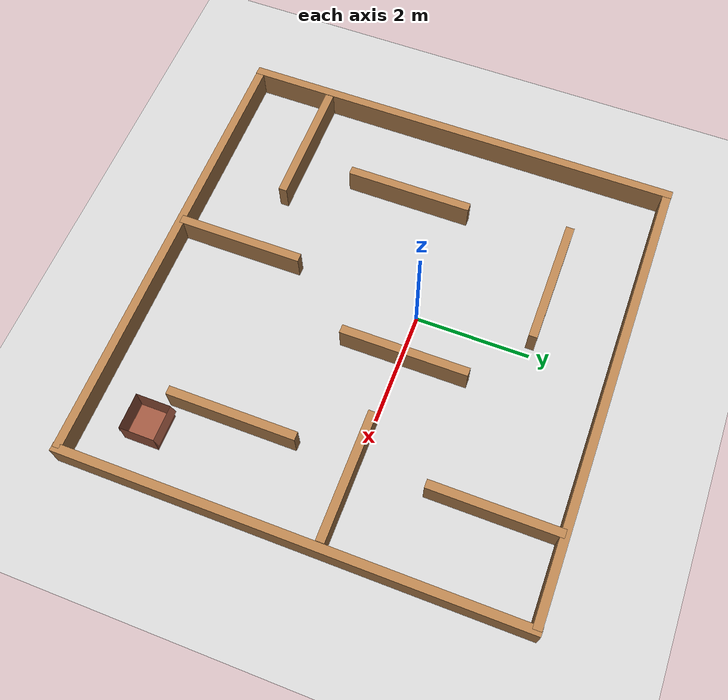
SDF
<sdf version="1.6">
 <world name="default">
  <light name="sun" type="directional">
   <pose>0 0 10 0 -0 0</pose>
   <diffuse>0.8 0.8 0.8 1</diffuse>
   <specular>0.1 0.1 0.1 1</specular>
   <attenuation>
    <range>1000</range>
    <constant>0.9</constant>
    <linear>0.01</linear>
    <quadratic>0.001</quadratic>
   </attenuation>
   <direction>-0.5 0.5 -1</direction>
  </light>
  <model name="ground_plane">
   <static>1</static>
   <link name="link">
    <collision name="collision">
     <geometry><plane><normal>0 0 1</normal><size>100 100</size></plane></geometry>
     <surface><friction><ode><mu>100</mu><mu2>50</mu2></ode></friction></surface>
    </collision>
    <visual name="visual">
     <cast_shadows>0</cast_shadows>
     <geometry><plane><normal>0 0 1</normal><size>100 100</size></plane></geometry>
     <material>
      <script><uri>file://media/materials/scripts/gazebo.material</uri><name>Gazebo/Grey</name></script>
     </material>
    </visual>
   </link>
  </model>
  <physics name="default_physics" default="0" type="ode">
   <real_time_update_rate>1000</real_time_update_rate>
   <max_step_size>0.001</max_step_size>
   <real_time_factor>1</real_time_factor>
   <ode>
    <solver>
     <type>quick</type>
     <iters>150</iters>
     <precon_iters>0</precon_iters>
     <sor>1.4</sor>
     <use_dynamic_moi_rescaling>1</use_dynamic_moi_rescaling>
    </solver>
    <constraints>
     <cfm>1e-05</cfm>
     <erp>0.2</erp>
     <contact_max_correcting_vel>2000</contact_max_correcting_vel>
     <contact_surface_layer>0.01</contact_surface_layer>
    </constraints>
   </ode>
  </physics>
  <scene><ambient>0.4 0.4 0.4 1</ambient><background>0.7 0.7 0.7 1</background><shadows>1</shadows></scene>
  <gravity>0 0 -9.8</gravity>
  <magnetic_field>6e-06 2.3e-05 -4.2e-05</magnetic_field>
  <atmosphere type="adiabatic"/>
  <spherical_coordinates>
   <surface_model>EARTH_WGS84</surface_model>
   <latitude_deg>0</latitude_deg>
   <longitude_deg>0</longitude_deg>
   <elevation>0</elevation>
   <heading_deg>0</heading_deg>
  </spherical_coordinates>
  <model name="turtlebot3_plaza">
   <pose>0.34992 -0.526986 0 0 -0 0</pose>
   <link name="Wall_0">
    <collision name="Wall_0_Collision">
     <geometry><box><size>8.0 0.15 0.5</size></box></geometry>
     <pose>0 0 0.25 0 -0 0</pose>
    </collision>
    <visual name="Wall_0_Visual">
     <pose>0 0 0.25 0 -0 0</pose>
     <geometry><box><size>8.0 0.15 0.5</size></box></geometry>
     <material>
      <script><uri>file://media/materials/scripts/gazebo.material</uri><name>Gazebo/Wood</name></script>
      <ambient>1 1 1 1</ambient>
     </material>
    </visual>
    <pose>-4.0 0 0 0 0 1.5708</pose>
   </link>
   <link name="Wall_1">
    <collision name="Wall_1_Collision">
     <geometry><box><size>8.0 0.15 0.5</size></box></geometry>
     <pose>0 0 0.25 0 -0 0</pose>
    </collision>
    <visual name="Wall_1_Visual">
     <pose>0 0 0.25 0 -0 0</pose>
     <geometry><box><size>8.0 0.15 0.5</size></box></geometry>
     <material>
      <script><uri>file://media/materials/scripts/gazebo.material</uri><name>Gazebo/Wood</name></script>
      <ambient>1 1 1 1</ambient>
     </material>
    </visual>
    <pose>0 3.92 0 0 0 0</pose>
   </link>
   <link name="Wall_2">
    <collision name="Wall_2_Collision">
     <geometry><box><size>8.0 0.15 0.5</size></box></geometry>
     <pose>0 0 0.25 0 -0 0</pose>
    </collision>
    <visual name="Wall_2_Visual">
     <pose>0 0 0.25 0 -0 0</pose>
     <geometry><box><size>8.0 0.15 0.5</size></box></geometry>
     <material>
      <script><uri>file://media/materials/scripts/gazebo.material</uri><name>Gazebo/Wood</name></script>
      <ambient>1 1 1 1</ambient>
     </material>
    </visual>
    <pose>4.0 0 0 0 0 1.5708</pose>
   </link>
   <link name="Wall_3">
    <collision name="Wall_3_Collision">
     <geometry><box><size>8.0 0.15 0.5</size></box></geometry>
     <pose>0 0 0.25 0 -0 0</pose>
    </collision>
    <visual name="Wall_3_Visual">
     <pose>0 0 0.25 0 -0 0</pose>
     <geometry><box><size>8.0 0.15 0.5</size></box></geometry>
     <material>
      <script><uri>file://media/materials/scripts/gazebo.material</uri><name>Gazebo/Wood</name></script>
      <ambient>1 1 1 1</ambient>
     </material>
    </visual>
    <pose>0 -3.92 0 0 0 3.14159</pose>
   </link>
   <link name="Wall_4">
    <collision name="Wall_4_Collision">
     <geometry><box><size>2.24 0.15 0.5</size></box></geometry>
     <pose>0 0 0.25 0 -0 0</pose>
    </collision>
    <visual name="Wall_4_Visual">
     <pose>0 0 0.25 0 -0 0</pose>
     <geometry><box><size>2.24 0.15 0.5</size></box></geometry>
     <material>
      <script><uri>file://media/materials/scripts/gazebo.material</uri><name>Gazebo/Wood</name></script>
      <ambient>1 1 1 1</ambient>
     </material>
    </visual>
    <pose>-2.8 -2.5 0 0 0 0</pose>
   </link>
   <link name="Wall_5">
    <collision name="Wall_5_Collision">
     <geometry><box><size>2.24 0.15 0.5</size></box></geometry>
     <pose>0 0 0.25 0 -0 0</pose>
    </collision>
    <visual name="Wall_5_Visual">
     <pose>0 0 0.25 0 -0 0</pose>
     <geometry><box><size>2.24 0.15 0.5</size></box></geometry>
     <material>
      <script><uri>file://media/materials/scripts/gazebo.material</uri><name>Gazebo/Wood</name></script>
      <ambient>1 1 1 1</ambient>
     </material>
    </visual>
    <pose>-0.5 -2.8 0 0 0 -1.5708</pose>
   </link>
   <link name="Wall_6">
    <collision name="Wall_6_Collision">
     <geometry><box><size>2.24 0.15 0.5</size></box></geometry>
     <pose>0 0 0.25 0 -0 0</pose>
    </collision>
    <visual name="Wall_6_Visual">
     <pose>0 0 0.25 0 -0 0</pose>
     <geometry><box><size>2.24 0.15 0.5</size></box></geometry>
     <material>
      <script><uri>file://media/materials/scripts/gazebo.material</uri><name>Gazebo/Wood</name></script>
      <ambient>1 1 1 1</ambient>
     </material>
    </visual>
    <pose>2.5 -1.6 0 0 0 1.5708</pose>
   </link>
   <link name="Wall_7">
    <collision name="Wall_7_Collision">
     <geometry><box><size>2.24 0.15 0.5</size></box></geometry>
     <pose>0 0 0.25 0 -0 0</pose>
    </collision>
    <visual name="Wall_7_Visual">
     <pose>0 0 0.25 0 -0 0</pose>
     <geometry><box><size>2.24 0.15 0.5</size></box></geometry>
     <material>
      <script><uri>file://media/materials/scripts/gazebo.material</uri><name>Gazebo/Wood</name></script>
      <ambient>1 1 1 1</ambient>
     </material>
    </visual>
    <pose>0.5 0.6 0 0 0 -1.5708</pose>
   </link>
   <link name="Wall_8">
    <collision name="Wall_8_Collision">
     <geometry><box><size>2.24 0.15 0.5</size></box></geometry>
     <pose>0 0 0.25 0 -0 0</pose>
    </collision>
    <visual name="Wall_8_Visual">
     <pose>0 0 0.25 0 -0 0</pose>
     <geometry><box><size>2.24 0.15 0.5</size></box></geometry>
     <material>
      <script><uri>file://media/materials/scripts/gazebo.material</uri><name>Gazebo/Wood</name></script>
      <ambient>1 1 1 1</ambient>
     </material>
    </visual>
    <pose>2.8 0.5 0 0 0 0</pose>
   </link>
   <link name="Wall_9">
    <collision name="Wall_9_Collision">
     <geometry><box><size>2.24 0.15 0.5</size></box></geometry>
     <pose>0 0 0.25 0 -0 0</pose>
    </collision>
    <visual name="Wall_9_Visual">
     <pose>0 0 0.25 0 -0 0</pose>
     <geometry><box><size>2.24 0.15 0.5</size></box></geometry>
     <material>
      <script><uri>file://media/materials/scripts/gazebo.material</uri><name>Gazebo/Wood</name></script>
      <ambient>1 1 1 1</ambient>
     </material>
    </visual>
    <pose>2.5 2.8 0 0 0 -1.5708</pose>
   </link>
   <link name="Wall_10">
    <collision name="Wall_10_Collision">
     <geometry><box><size>2.24 0.15 0.5</size></box></geometry>
     <pose>0 0 0.25 0 -0 0</pose>
    </collision>
    <visual name="Wall_10_Visual">
     <pose>0 0 0.25 0 -0 0</pose>
     <geometry><box><size>2.24 0.15 0.5</size></box></geometry>
     <material>
      <script><uri>file://media/materials/scripts/gazebo.material</uri><name>Gazebo/Wood</name></script>
      <ambient>1 1 1 1</ambient>
     </material>
    </visual>
    <pose>-1.6 2.5 0 0 0 0</pose>
   </link>
   <link name="Wall_11">
    <collision name="Wall_11_Collision">
     <geometry><box><size>2.24 0.15 0.5</size></box></geometry>
     <pose>0 0 0.25 0 -0 0</pose>
    </collision>
    <visual name="Wall_11_Visual">
     <pose>0 0 0.25 0 -0 0</pose>
     <geometry><box><size>2.24 0.15 0.5</size></box></geometry>
     <material>
      <script><uri>file://media/materials/scripts/gazebo.material</uri><name>Gazebo/Wood</name></script>
      <ambient>1 1 1 1</ambient>
     </material>
    </visual>
    <pose>-2.5 -0.4 0 0 0 -1.5708</pose>
   </link>
   <static>1</static>
  </model>
  <model name="pr2_bin">
   <link name="link">
    <inertial>
     <mass>1</mass>
     <inertia><ixx>1</ixx><ixy>0</ixy><ixz>0</ixz><iyy>1</iyy><iyz>0</iyz><izz>1</izz></inertia>
    </inertial>
    <visual name="visual">
     <geometry><mesh><uri>model://bookcart/meshes/bookcart.dae</uri><scale>0.4 0.4 0.3</scale></mesh></geometry>
     <material><shader type="vertex"><normal_map>__default__</normal_map></shader></material>
    </visual>
   </link>
   <static>1</static>
   <pose>3.08 -3.7 0 0 0 0</pose>
  </model>
 </world>
</sdf>
